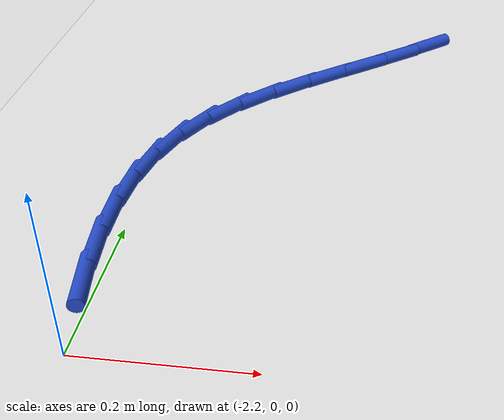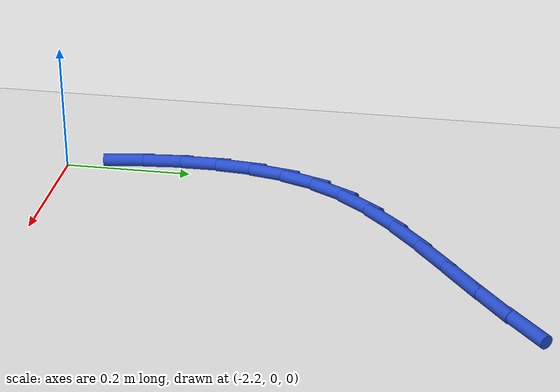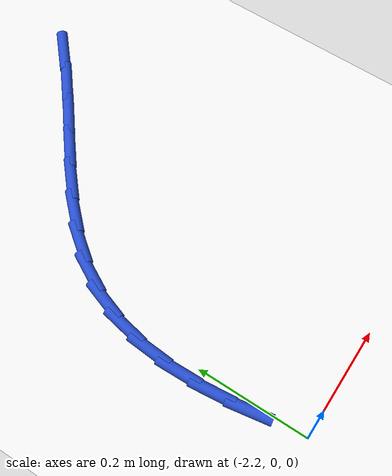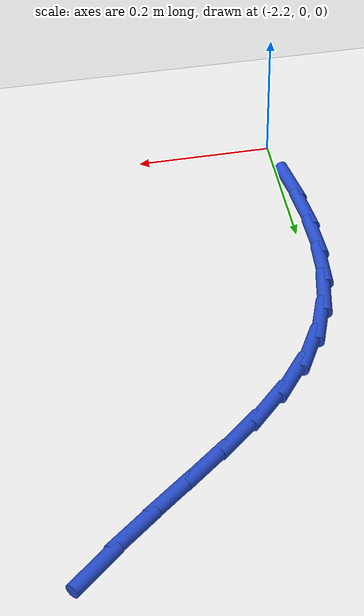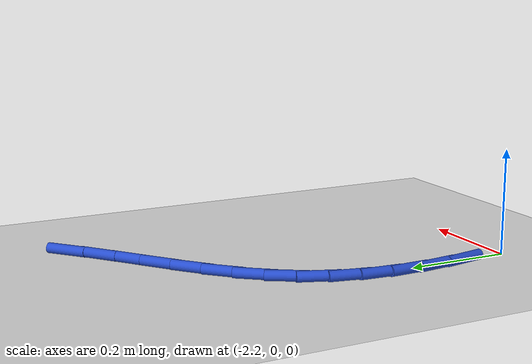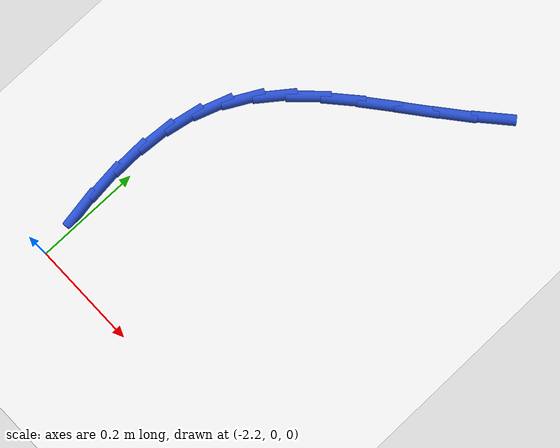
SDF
<sdf version="1.6">
 <world name="default">
  <model name="ground_plane">
   <static>1</static>
   <link name="link">
    <collision name="collision">
     <geometry><plane><normal>0 0 1</normal><size>100 100</size></plane></geometry>
     <surface><friction><ode><mu>100</mu><mu2>50</mu2></ode></friction></surface>
    </collision>
    <visual name="visual">
     <cast_shadows>0</cast_shadows>
     <geometry><plane><normal>0 0 1</normal><size>100 100</size></plane></geometry>
     <material>
      <script><uri>file://media/materials/scripts/gazebo.material</uri><name>Gazebo/WhiteGlow</name></script>
     </material>
    </visual>
   </link>
  </model>
  <model name="line">
   <link name="link_42">
    <pose>-1.8360130706884805 0.7303677717317844 0.01 0 1.57 0.7177628610620403</pose>
    <collision name="collision">
     <geometry><cylinder><radius>0.01</radius><length>0.08</length></cylinder></geometry>
    </collision>
    <visual name="visual">
     <material>
      <script><name>Gazebo/Blue</name><uri>file://media/materials/scripts/gazebo.material</uri></script>
     </material>
     <geometry><cylinder><radius>0.01</radius><length>0.08</length></cylinder></geometry>
    </visual>
   </link>
   <link name="link_43">
    <pose>-1.8873234768485336 0.6855677535398456 0.01 0 1.57 0.6779316415933857</pose>
    <collision name="collision">
     <geometry><cylinder><radius>0.01</radius><length>0.08</length></cylinder></geometry>
    </collision>
    <visual name="visual">
     <material>
      <script><name>Gazebo/Blue</name><uri>file://media/materials/scripts/gazebo.material</uri></script>
     </material>
     <geometry><cylinder><radius>0.01</radius><length>0.08</length></cylinder></geometry>
    </visual>
   </link>
   <link name="link_44">
    <pose>-1.9396457694207971 0.6434354285784418 0.01 0 1.57 0.6638875280592602</pose>
    <collision name="collision">
     <geometry><cylinder><radius>0.01</radius><length>0.08</length></cylinder></geometry>
    </collision>
    <visual name="visual">
     <material>
      <script><name>Gazebo/Blue</name><uri>file://media/materials/scripts/gazebo.material</uri></script>
     </material>
     <geometry><cylinder><radius>0.01</radius><length>0.08</length></cylinder></geometry>
    </visual>
   </link>
   <link name="link_45">
    <pose>-1.9914426054590677 0.6029120220050832 0.01 0 1.57 0.6770176211318338</pose>
    <collision name="collision">
     <geometry><cylinder><radius>0.01</radius><length>0.08</length></cylinder></geometry>
    </collision>
    <visual name="visual">
     <material>
      <script><name>Gazebo/Blue</name><uri>file://media/materials/scripts/gazebo.material</uri></script>
     </material>
     <geometry><cylinder><radius>0.01</radius><length>0.08</length></cylinder></geometry>
    </visual>
   </link>
   <link name="link_46">
    <pose>-2.041176642017145 0.5629387589772805 0.01 0 1.57 0.7202368552124023</pose>
    <collision name="collision">
     <geometry><cylinder><radius>0.01</radius><length>0.08</length></cylinder></geometry>
    </collision>
    <visual name="visual">
     <material>
      <script><name>Gazebo/Blue</name><uri>file://media/materials/scripts/gazebo.material</uri></script>
     </material>
     <geometry><cylinder><radius>0.01</radius><length>0.08</length></cylinder></geometry>
    </visual>
   </link>
   <link name="link_47">
    <pose>-2.087310536148824 0.5224568646525438 0.01 0 1.57 0.7980759441672716</pose>
    <collision name="collision">
     <geometry><cylinder><radius>0.01</radius><length>0.08</length></cylinder></geometry>
    </collision>
    <visual name="visual">
     <material>
      <script><name>Gazebo/Blue</name><uri>file://media/materials/scripts/gazebo.material</uri></script>
     </material>
     <geometry><cylinder><radius>0.01</radius><length>0.08</length></cylinder></geometry>
    </visual>
   </link>
   <link name="link_48">
    <pose>-2.1283069449079055 0.4804075641883831 0.01 0 1.57 0.9157222054109145</pose>
    <collision name="collision">
     <geometry><cylinder><radius>0.01</radius><length>0.08</length></cylinder></geometry>
    </collision>
    <visual name="visual">
     <material>
      <script><name>Gazebo/Blue</name><uri>file://media/materials/scripts/gazebo.material</uri></script>
     </material>
     <geometry><cylinder><radius>0.01</radius><length>0.08</length></cylinder></geometry>
    </visual>
   </link>
   <link name="link_49">
    <pose>-2.1626285253481865 0.4357320827423092 0.01 0 1.57 1.072835260056726</pose>
    <collision name="collision">
     <geometry><cylinder><radius>0.01</radius><length>0.08</length></cylinder></geometry>
    </collision>
    <visual name="visual">
     <material>
      <script><name>Gazebo/Blue</name><uri>file://media/materials/scripts/gazebo.material</uri></script>
     </material>
     <geometry><cylinder><radius>0.01</radius><length>0.08</length></cylinder></geometry>
    </visual>
   </link>
   <link name="link_50">
    <pose>-2.1888741699680563 0.3874560612660921 0.01 0 1.57 1.2350765538372133</pose>
    <collision name="collision">
     <geometry><cylinder><radius>0.01</radius><length>0.08</length></cylinder></geometry>
    </collision>
    <visual name="visual">
     <material>
      <script><name>Gazebo/Blue</name><uri>file://media/materials/scripts/gazebo.material</uri></script>
     </material>
     <geometry><cylinder><radius>0.01</radius><length>0.08</length></cylinder></geometry>
    </visual>
   </link>
   <link name="link_51">
    <pose>-2.2070180153543335 0.33545728548464737 0.01 0 1.57 1.377859107798138</pose>
    <collision name="collision">
     <geometry><cylinder><radius>0.01</radius><length>0.08</length></cylinder></geometry>
    </collision>
    <visual name="visual">
     <material>
      <script><name>Gazebo/Blue</name><uri>file://media/materials/scripts/gazebo.material</uri></script>
     </material>
     <geometry><cylinder><radius>0.01</radius><length>0.08</length></cylinder></geometry>
    </visual>
   </link>
   <link name="link_52">
    <pose>-2.2178315409163014 0.28010759997708545 0.01 0 1.57 1.4978078180379846</pose>
    <collision name="collision">
     <geometry><cylinder><radius>0.01</radius><length>0.08</length></cylinder></geometry>
    </collision>
    <visual name="visual">
     <material>
      <script><name>Gazebo/Blue</name><uri>file://media/materials/scripts/gazebo.material</uri></script>
     </material>
     <geometry><cylinder><radius>0.01</radius><length>0.08</length></cylinder></geometry>
    </visual>
   </link>
   <link name="link_53">
    <pose>-2.222096002698032 0.22178490723493138 0.01 0 1.57 -1.5461230631485567</pose>
    <collision name="collision">
     <geometry><cylinder><radius>0.01</radius><length>0.08</length></cylinder></geometry>
    </collision>
    <visual name="visual">
     <material>
      <script><name>Gazebo/Blue</name><uri>file://media/materials/scripts/gazebo.material</uri></script>
     </material>
     <geometry><cylinder><radius>0.01</radius><length>0.08</length></cylinder></geometry>
    </visual>
   </link>
   <link name="link_54">
    <pose>-2.2205926567436016 0.16086710974971044 0.01 0 1.57 -1.4683621335385322</pose>
    <collision name="collision">
     <geometry><cylinder><radius>0.01</radius><length>0.08</length></cylinder></geometry>
    </collision>
    <visual name="visual">
     <material>
      <script><name>Gazebo/Blue</name><uri>file://media/materials/scripts/gazebo.material</uri></script>
     </material>
     <geometry><cylinder><radius>0.01</radius><length>0.08</length></cylinder></geometry>
    </visual>
   </link>
   <link name="link_55">
    <pose>-2.2141027590970825 0.09773211001294752 0.01 0 1.57 -1.4076527841173434</pose>
    <collision name="collision">
     <geometry><cylinder><radius>0.01</radius><length>0.08</length></cylinder></geometry>
    </collision>
    <visual name="visual">
     <material>
      <script><name>Gazebo/Blue</name><uri>file://media/materials/scripts/gazebo.material</uri></script>
     </material>
     <geometry><cylinder><radius>0.01</radius><length>0.08</length></cylinder></geometry>
    </visual>
   </link>
  </model>
 </world>
</sdf>
